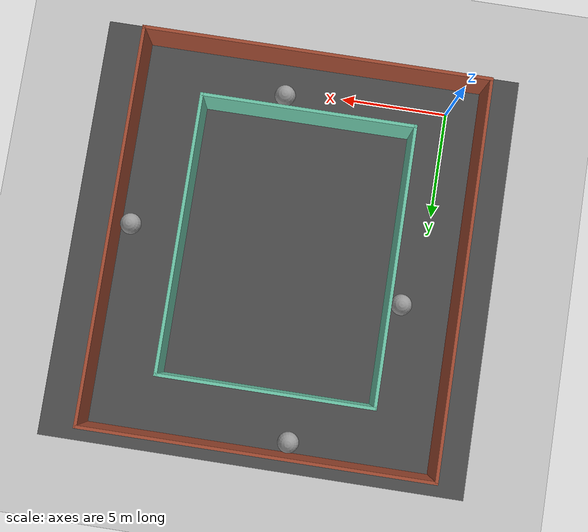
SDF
<sdf version="1.7">
 <world name="default">
  <light name="sun" type="directional">
   <pose>0 0 10 0 -0 0</pose>
   <diffuse>0.8 0.8 0.8 1</diffuse>
   <specular>0.2 0.2 0.2 1</specular>
   <attenuation>
    <range>1000</range>
    <constant>0.9</constant>
    <linear>0.01</linear>
    <quadratic>0.001</quadratic>
   </attenuation>
   <direction>-0.5 0.1 -0.9</direction>
   <spot><inner_angle>0</inner_angle><outer_angle>0</outer_angle><falloff>0</falloff></spot>
  </light>
  <model name="ground_plane">
   <static>1</static>
   <link name="link">
    <collision name="collision">
     <geometry><plane><normal>0 0 1</normal><size>100 100</size></plane></geometry>
     <surface><friction><ode><mu>100</mu><mu2>50</mu2></ode></friction></surface>
    </collision>
    <visual name="visual">
     <cast_shadows>0</cast_shadows>
     <geometry><plane><normal>0 0 1</normal><size>100 100</size></plane></geometry>
     <material>
      <script><uri>file://media/materials/scripts/gazebo.material</uri><name>Gazebo/Grey</name></script>
     </material>
    </visual>
   </link>
  </model>
  <gravity>0 0 -9.8</gravity>
  <magnetic_field>6e-06 2.3e-05 -4.2e-05</magnetic_field>
  <atmosphere type="adiabatic"/>
  <physics type="ode">
   <max_step_size>0.001</max_step_size>
   <real_time_factor>1</real_time_factor>
   <real_time_update_rate>1000</real_time_update_rate>
  </physics>
  <scene><ambient>0.4 0.4 0.4 1</ambient><background>0.7 0.7 0.7 1</background><shadows>1</shadows></scene>
  <audio><device>default</device></audio>
  <spherical_coordinates>
   <surface_model>EARTH_WGS84</surface_model>
   <latitude_deg>0</latitude_deg>
   <longitude_deg>0</longitude_deg>
   <elevation>0</elevation>
   <heading_deg>0</heading_deg>
  </spherical_coordinates>
  <model name="square">
   <pose>6.5117 7.85257 0 0 -0 0</pose>
   <link name="Wall_13">
    <collision name="Wall_13_Collision">
     <geometry><box><size>18.5 0.15 2.5</size></box></geometry>
     <pose>0 0 1.25 0 -0 0</pose>
    </collision>
    <visual name="Wall_13_Visual">
     <pose>0 0 1.25 0 -0 0</pose>
     <geometry><box><size>18.5 0.15 2.5</size></box></geometry>
     <material>
      <script><uri>file://media/materials/scripts/gazebo.material</uri><name>Gazebo/Bricks</name></script>
      <ambient>1 1 1 1</ambient>
     </material>
     <meta><layer>0</layer></meta>
    </visual>
    <pose>8.05 -0 0 0 -0 1.5708</pose>
   </link>
   <link name="Wall_14">
    <collision name="Wall_14_Collision">
     <geometry><box><size>16.25 0.15 2.5</size></box></geometry>
     <pose>0 0 1.25 0 -0 0</pose>
    </collision>
    <visual name="Wall_14_Visual">
     <pose>0 0 1.25 0 -0 0</pose>
     <geometry><box><size>16.25 0.15 2.5</size></box></geometry>
     <material>
      <script><uri>file://media/materials/scripts/gazebo.material</uri><name>Gazebo/Bricks</name></script>
      <ambient>1 1 1 1</ambient>
     </material>
     <meta><layer>0</layer></meta>
    </visual>
    <pose>0 9.175 0 0 -0 3.14159</pose>
   </link>
   <link name="Wall_15">
    <collision name="Wall_15_Collision">
     <geometry><box><size>18.5 0.15 2.5</size></box></geometry>
     <pose>0 0 1.25 0 -0 0</pose>
    </collision>
    <visual name="Wall_15_Visual">
     <pose>0 0 1.25 0 -0 0</pose>
     <geometry><box><size>18.5 0.15 2.5</size></box></geometry>
     <material>
      <script><uri>file://media/materials/scripts/gazebo.material</uri><name>Gazebo/Bricks</name></script>
      <ambient>1 1 1 1</ambient>
     </material>
     <meta><layer>0</layer></meta>
    </visual>
    <pose>-8.05 -0 0 0 -0 -1.5708</pose>
   </link>
   <link name="Wall_17">
    <collision name="Wall_17_Collision">
     <geometry><box><size>16.25 0.15 2.5</size></box></geometry>
     <pose>0 0 1.25 0 -0 0</pose>
    </collision>
    <visual name="Wall_17_Visual">
     <pose>0 0 1.25 0 -0 0</pose>
     <geometry><box><size>16.25 0.15 2.5</size></box></geometry>
     <material>
      <script><uri>file://media/materials/scripts/gazebo.material</uri><name>Gazebo/Bricks</name></script>
      <ambient>1 1 1 1</ambient>
     </material>
     <meta><layer>0</layer></meta>
    </visual>
    <pose>0 -9.175 0 0 -0 0</pose>
   </link>
   <link name="Wall_20">
    <collision name="Wall_20_Collision">
     <geometry><box><size>10 0.15 2.5</size></box></geometry>
     <pose>0 0 1.25 0 -0 0</pose>
    </collision>
    <visual name="Wall_20_Visual">
     <pose>0 0 1.25 0 -0 0</pose>
     <geometry><box><size>10 0.15 2.5</size></box></geometry>
     <material>
      <script><uri>file://media/materials/scripts/gazebo.material</uri><name>Gazebo/Grey</name></script>
      <ambient>0.435294 0.796078 0.67451 1</ambient>
     </material>
     <meta><layer>0</layer></meta>
    </visual>
    <pose>0.002174 -6.46663 0 0 -0 0</pose>
   </link>
   <link name="Wall_21">
    <collision name="Wall_21_Collision">
     <geometry><box><size>13 0.15 2.5</size></box></geometry>
     <pose>0 0 1.25 0 -0 0</pose>
    </collision>
    <visual name="Wall_21_Visual">
     <pose>0 0 1.25 0 -0 0</pose>
     <geometry><box><size>13 0.15 2.5</size></box></geometry>
     <material>
      <script><uri>file://media/materials/scripts/gazebo.material</uri><name>Gazebo/Grey</name></script>
      <ambient>0.435294 0.796078 0.67451 1</ambient>
     </material>
     <meta><layer>0</layer></meta>
    </visual>
    <pose>4.92717 -0.041634 0 0 -0 1.5708</pose>
   </link>
   <link name="Wall_22">
    <collision name="Wall_22_Collision">
     <geometry><box><size>10 0.15 2.5</size></box></geometry>
     <pose>0 0 1.25 0 -0 0</pose>
    </collision>
    <visual name="Wall_22_Visual">
     <pose>0 0 1.25 0 -0 0</pose>
     <geometry><box><size>10 0.15 2.5</size></box></geometry>
     <material>
      <script><uri>file://media/materials/scripts/gazebo.material</uri><name>Gazebo/Grey</name></script>
      <ambient>0.435294 0.796078 0.67451 1</ambient>
     </material>
     <meta><layer>0</layer></meta>
    </visual>
    <pose>0.002174 6.38337 0 0 -0 3.14159</pose>
   </link>
   <link name="Wall_23">
    <collision name="Wall_23_Collision">
     <geometry><box><size>13 0.15 2.5</size></box></geometry>
     <pose>0 0 1.25 0 -0 0</pose>
    </collision>
    <visual name="Wall_23_Visual">
     <pose>0 0 1.25 0 -0 0</pose>
     <geometry><box><size>13 0.15 2.5</size></box></geometry>
     <material>
      <script><uri>file://media/materials/scripts/gazebo.material</uri><name>Gazebo/Grey</name></script>
      <ambient>0.435294 0.796078 0.67451 1</ambient>
     </material>
     <meta><layer>0</layer></meta>
    </visual>
    <pose>-4.92283 -0.041634 0 0 -0 -1.5708</pose>
   </link>
   <static>1</static>
  </model>
  <model name="asphalt_plane">
   <static>1</static>
   <link name="link">
    <collision name="collision">
     <geometry><box><size>20 20 0.1</size></box></geometry>
     <surface><friction><ode><mu>0.5</mu><mu2>0.3</mu2></ode></friction></surface>
    </collision>
    <visual name="visual">
     <cast_shadows>0</cast_shadows>
     <geometry><box><size>20 20 0.1</size></box></geometry>
     <material>
      <script>
       <uri>model://asphalt_plane/materials/scripts</uri>
       <uri>model://asphalt_plane/materials/textures</uri>
       <name>vrc/asphalt</name>
      </script>
     </material>
    </visual>
   </link>
   <pose>6.71641 7.90229 0 0 -0 0</pose>
  </model>
  <model name="unit_sphere">
   <pose>7.7444 0.374508 0.55 0 -0 0</pose>
   <link name="link">
    <inertial>
     <mass>1</mass>
     <inertia><ixx>0.1</ixx><ixy>0</ixy><ixz>0</ixz><iyy>0.1</iyy><iyz>0</iyz><izz>0.1</izz></inertia>
    </inertial>
    <collision name="collision"><geometry><sphere><radius>0.5</radius></sphere></geometry></collision>
    <visual name="visual">
     <geometry><sphere><radius>0.5</radius></sphere></geometry>
     <material>
      <script><name>Gazebo/Grey</name><uri>file://media/materials/scripts/gazebo.material</uri></script>
     </material>
    </visual>
   </link>
  </model>
  <model name="unit_sphere_0">
   <pose>13.9824 7.55257 0.55 0 0.021651 0</pose>
   <link name="link">
    <inertial>
     <mass>1</mass>
     <inertia><ixx>0.1</ixx><ixy>0</ixy><ixz>0</ixz><iyy>0.1</iyy><iyz>0</iyz><izz>0.1</izz></inertia>
    </inertial>
    <collision name="collision"><geometry><sphere><radius>0.5</radius></sphere></geometry></collision>
    <visual name="visual">
     <geometry><sphere><radius>0.5</radius></sphere></geometry>
     <material>
      <script><name>Gazebo/Grey</name><uri>file://media/materials/scripts/gazebo.material</uri></script>
     </material>
    </visual>
   </link>
  </model>
  <model name="unit_sphere_1">
   <pose>5.13395 16.4463 0.55 -0.123357 -1e-06 0</pose>
   <link name="link">
    <inertial>
     <mass>1</mass>
     <inertia><ixx>0.1</ixx><ixy>0</ixy><ixz>0</ixz><iyy>0.1</iyy><iyz>0</iyz><izz>0.1</izz></inertia>
    </inertial>
    <collision name="collision"><geometry><sphere><radius>0.5</radius></sphere></geometry></collision>
    <visual name="visual">
     <geometry><sphere><radius>0.5</radius></sphere></geometry>
     <material>
      <script><name>Gazebo/Grey</name><uri>file://media/materials/scripts/gazebo.material</uri></script>
     </material>
    </visual>
   </link>
  </model>
  <model name="unit_sphere_2">
   <pose>0.876996 9.38588 0.55 0 -0 0</pose>
   <link name="link">
    <inertial>
     <mass>1</mass>
     <inertia><ixx>0.1</ixx><ixy>0</ixy><ixz>0</ixz><iyy>0.1</iyy><iyz>0</iyz><izz>0.1</izz></inertia>
    </inertial>
    <collision name="collision"><geometry><sphere><radius>0.5</radius></sphere></geometry></collision>
    <visual name="visual">
     <geometry><sphere><radius>0.5</radius></sphere></geometry>
     <material>
      <script><name>Gazebo/Grey</name><uri>file://media/materials/scripts/gazebo.material</uri></script>
     </material>
    </visual>
   </link>
  </model>
 </world>
</sdf>
